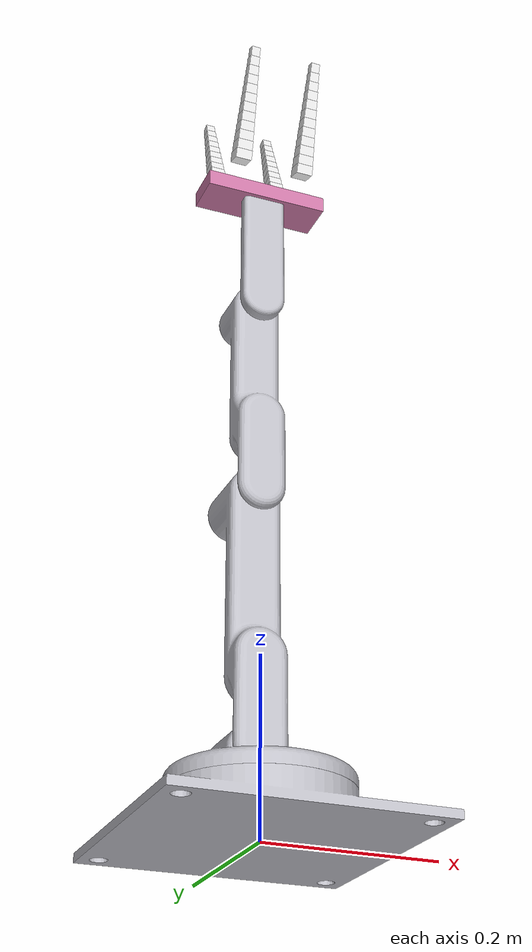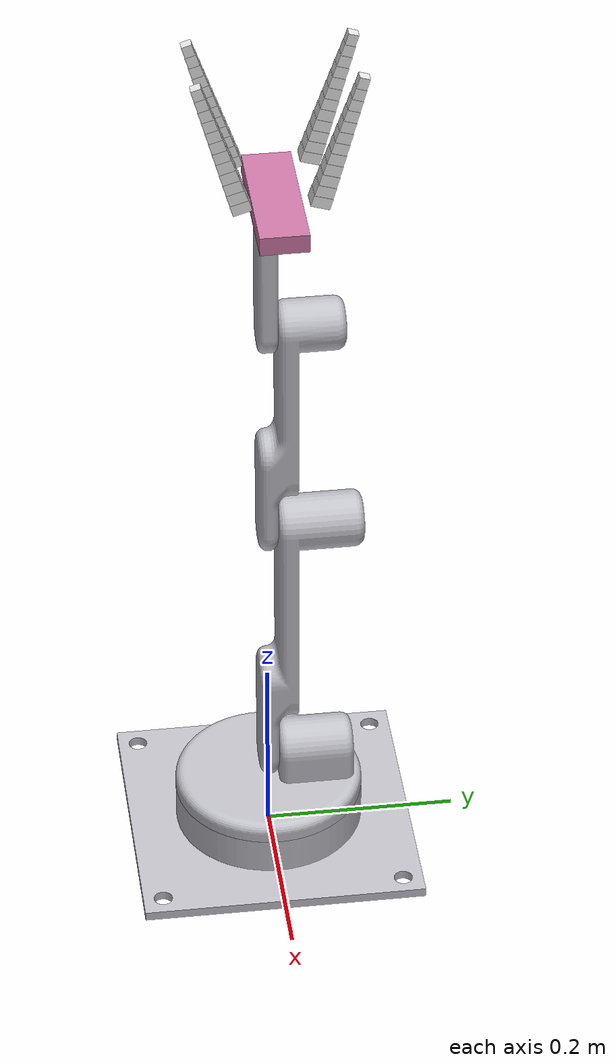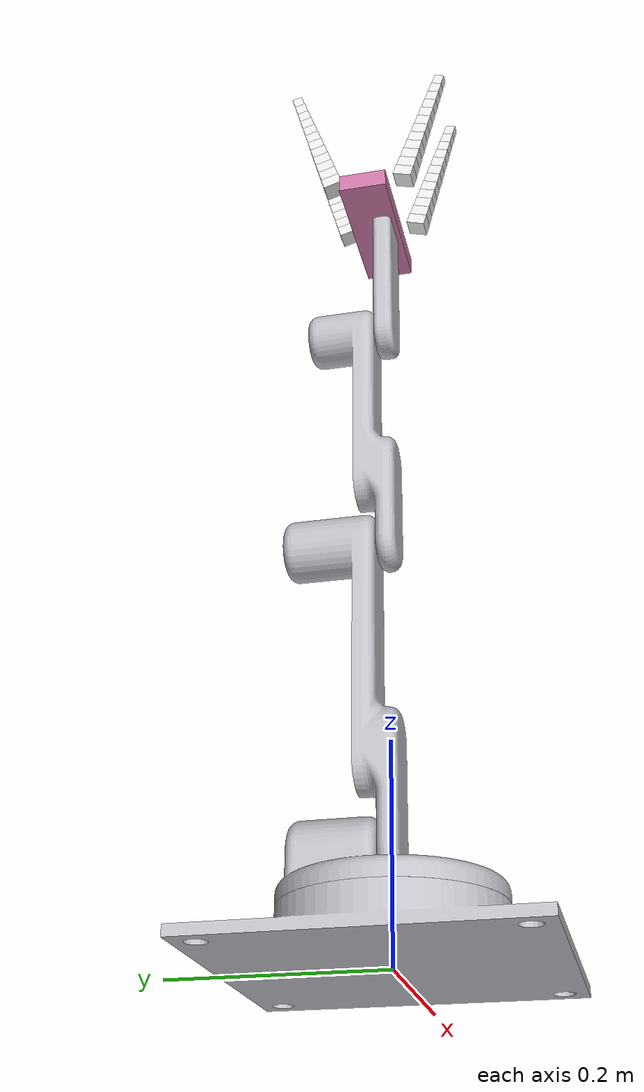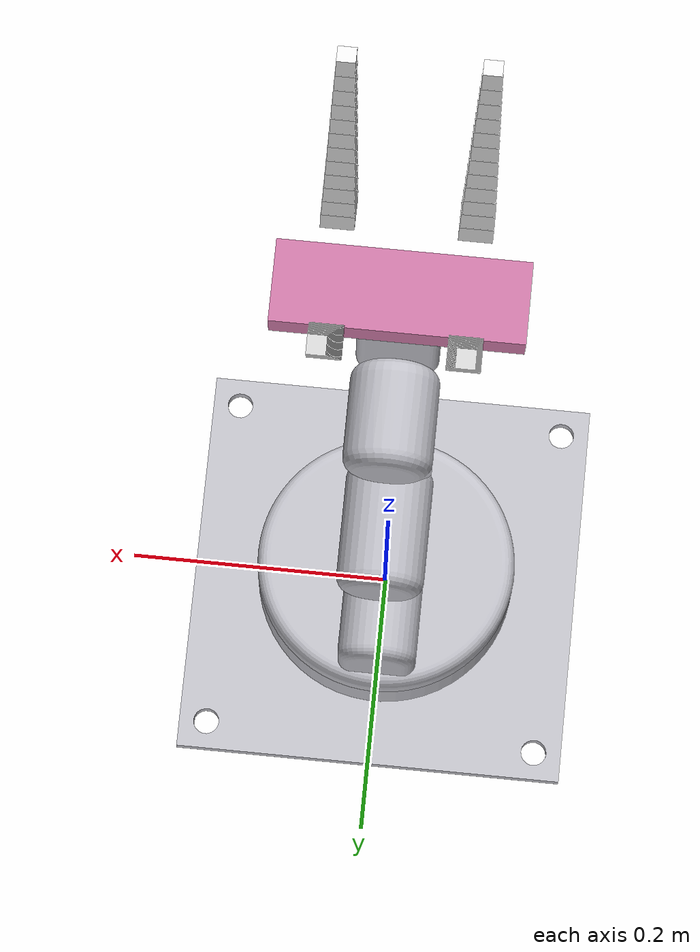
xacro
<robot xmlns:xacro="http://www.ros.org/wiki/xacro" name="Design">

<xacro:include filename="$(find main_description)/urdf/macros2.xacro" />
<xacro:include filename="$(find main_description)/urdf/arm.xacro" />

<xacro:property name="PI" value="3.14159" />

<link name="world" />

<link name="palm">
	<visual>
		<geometry>
			<box size="0.15 0.05 0.02" />
		</geometry>
	</visual>
	<inertial>
		<mass value="0.1" />
		<inertia ixx="0.001" ixy="0.001" ixz="0.001" iyy="0.001" iyz="0.001" izz="0.001" />
	</inertial>
	<collision>
		<geometry>
			<box size="0.15 0.05 0.02" />
		</geometry>
		</collision>
</link>

<gazebo reference="palm">
	<mu1>2000</mu1>
	<mu2>2000</mu2>
	<selfCollide>true</selfCollide>
	<gravity>true</gravity>
</gazebo>

<joint name="palm_arm_joint" type="fixed">
    <parent link="Link4_1" />
    <child link="palm" />
	<origin rpy="0 0 0" xyz="0.0 0 0.15" />
</joint>

<gazebo>
  	<plugin filename="libgazebo_ros_control.so" name="gazebo_ros_control">
		<robotNamespace />
  	</plugin>
 	<plugin filename="libspring_joint_plugin.so" name="spring_joint_plugin">
		<kConstant> 0.4 </kConstant>
	</plugin>
	<plugin filename="libjoint_controller_plugin.so" name="joint_controller_plugin">
		<jointNamesParam> arm_controller/ </jointNamesParam>
	</plugin>
	<plugin filename="libjoint_force_visualiser_plugin.so" name="joint_force_visualier_plugin">
		<robotNamespace />
	</plugin>

</gazebo>

 <!--  MACROS FOR FINGER: LT-->

<xacro:seg name= "LTseg1" length = "0.0125" height = "0.02" width = "0.02" />
<xacro:seg_joint_offset seg1= "palm" seg2="LTseg1" length="0.0125" offset="0.04 0.04 0.03" rotation="-0.3 0 0" force="2.0" />
<xacro:seg_trans seg1="palm" seg2="LTseg1"/>
<xacro:segment name= "LTseg2" parent="LTseg1" length="0.0125" height="0.0191666666667" width = "0.0191666666667" force = "2.0" />
<xacro:segment name= "LTseg3" parent="LTseg2" length="0.0125" height="0.0183333333333" width = "0.0183333333333" force = "2.0" />
<xacro:segment name= "LTseg4" parent="LTseg3" length="0.0125" height="0.0175" width = "0.0175" force = "2.0" />
<xacro:segment name= "LTseg5" parent="LTseg4" length="0.0125" height="0.0166666666667" width = "0.0166666666667" force = "2.0" />
<xacro:segment name= "LTseg6" parent="LTseg5" length="0.0125" height="0.0158333333333" width = "0.0158333333333" force = "2.0" />
<xacro:segment name= "LTseg7" parent="LTseg6" length="0.0125" height="0.015" width = "0.015" force = "2.0" />
<xacro:segment name= "LTseg8" parent="LTseg7" length="0.0125" height="0.0141666666667" width = "0.0141666666667" force = "2.0" />
<xacro:segment name= "LTseg9" parent="LTseg8" length="0.0125" height="0.0133333333333" width = "0.0133333333333" force = "2.0" />
<xacro:segment name= "LTseg10" parent="LTseg9" length="0.0125" height="0.0125" width = "0.0125" force = "2.0" />
<xacro:segment name= "LTseg11" parent="LTseg10" length="0.0125" height="0.0116666666667" width = "0.0116666666667" force = "2.0" />
<xacro:segment name= "LTseg12" parent="LTseg11" length="0.0125" height="0.0108333333333" width = "0.0108333333333" force = "2.0" />

 <!--  MACROS FOR FINGER: RT-->

<xacro:seg name= "RTseg1" length = "0.0125" height = "0.02" width = "0.02" />
<xacro:seg_joint_offset seg1= "palm" seg2="RTseg1" length="0.0125" offset="0.04 -0.04 0.03" rotation="-0.3 0 3.14159" force="2.0" />
<xacro:seg_trans seg1="palm" seg2="RTseg1"/>
<xacro:segment name= "RTseg2" parent="RTseg1" length="0.0125" height="0.0191666666667" width = "0.0191666666667" force = "2.0" />
<xacro:segment name= "RTseg3" parent="RTseg2" length="0.0125" height="0.0183333333333" width = "0.0183333333333" force = "2.0" />
<xacro:segment name= "RTseg4" parent="RTseg3" length="0.0125" height="0.0175" width = "0.0175" force = "2.0" />
<xacro:segment name= "RTseg5" parent="RTseg4" length="0.0125" height="0.0166666666667" width = "0.0166666666667" force = "2.0" />
<xacro:segment name= "RTseg6" parent="RTseg5" length="0.0125" height="0.0158333333333" width = "0.0158333333333" force = "2.0" />
<xacro:segment name= "RTseg7" parent="RTseg6" length="0.0125" height="0.015" width = "0.015" force = "2.0" />
<xacro:segment name= "RTseg8" parent="RTseg7" length="0.0125" height="0.0141666666667" width = "0.0141666666667" force = "2.0" />
<xacro:segment name= "RTseg9" parent="RTseg8" length="0.0125" height="0.0133333333333" width = "0.0133333333333" force = "2.0" />
<xacro:segment name= "RTseg10" parent="RTseg9" length="0.0125" height="0.0125" width = "0.0125" force = "2.0" />
<xacro:segment name= "RTseg11" parent="RTseg10" length="0.0125" height="0.0116666666667" width = "0.0116666666667" force = "2.0" />
<xacro:segment name= "RTseg12" parent="RTseg11" length="0.0125" height="0.0108333333333" width = "0.0108333333333" force = "2.0" />

 <!--  MACROS FOR FINGER: LB-->

<xacro:seg name= "LBseg1" length = "0.0125" height = "0.02" width = "0.02" />
<xacro:seg_joint_offset seg1= "palm" seg2="LBseg1" length="0.0125" offset="-0.04 0.04 0.03" rotation="-0.3 0 0" force="2.0" />
<xacro:seg_trans seg1="palm" seg2="LBseg1"/>
<xacro:segment name= "LBseg2" parent="LBseg1" length="0.0125" height="0.0191666666667" width = "0.0191666666667" force = "2.0" />
<xacro:segment name= "LBseg3" parent="LBseg2" length="0.0125" height="0.0183333333333" width = "0.0183333333333" force = "2.0" />
<xacro:segment name= "LBseg4" parent="LBseg3" length="0.0125" height="0.0175" width = "0.0175" force = "2.0" />
<xacro:segment name= "LBseg5" parent="LBseg4" length="0.0125" height="0.0166666666667" width = "0.0166666666667" force = "2.0" />
<xacro:segment name= "LBseg6" parent="LBseg5" length="0.0125" height="0.0158333333333" width = "0.0158333333333" force = "2.0" />
<xacro:segment name= "LBseg7" parent="LBseg6" length="0.0125" height="0.015" width = "0.015" force = "2.0" />
<xacro:segment name= "LBseg8" parent="LBseg7" length="0.0125" height="0.0141666666667" width = "0.0141666666667" force = "2.0" />
<xacro:segment name= "LBseg9" parent="LBseg8" length="0.0125" height="0.0133333333333" width = "0.0133333333333" force = "2.0" />
<xacro:segment name= "LBseg10" parent="LBseg9" length="0.0125" height="0.0125" width = "0.0125" force = "2.0" />
<xacro:segment name= "LBseg11" parent="LBseg10" length="0.0125" height="0.0116666666667" width = "0.0116666666667" force = "2.0" />
<xacro:segment name= "LBseg12" parent="LBseg11" length="0.0125" height="0.0108333333333" width = "0.0108333333333" force = "2.0" />

 <!--  MACROS FOR FINGER: RB-->

<xacro:seg name= "RBseg1" length = "0.0125" height = "0.02" width = "0.02" />
<xacro:seg_joint_offset seg1= "palm" seg2="RBseg1" length="0.0125" offset="-0.04 -0.04 0.03" rotation="-0.3 0 3.14159" force="2.0" />
<xacro:seg_trans seg1="palm" seg2="RBseg1"/>
<xacro:segment name= "RBseg2" parent="RBseg1" length="0.0125" height="0.0191666666667" width = "0.0191666666667" force = "2.0" />
<xacro:segment name= "RBseg3" parent="RBseg2" length="0.0125" height="0.0183333333333" width = "0.0183333333333" force = "2.0" />
<xacro:segment name= "RBseg4" parent="RBseg3" length="0.0125" height="0.0175" width = "0.0175" force = "2.0" />
<xacro:segment name= "RBseg5" parent="RBseg4" length="0.0125" height="0.0166666666667" width = "0.0166666666667" force = "2.0" />
<xacro:segment name= "RBseg6" parent="RBseg5" length="0.0125" height="0.0158333333333" width = "0.0158333333333" force = "2.0" />
<xacro:segment name= "RBseg7" parent="RBseg6" length="0.0125" height="0.015" width = "0.015" force = "2.0" />
<xacro:segment name= "RBseg8" parent="RBseg7" length="0.0125" height="0.0141666666667" width = "0.0141666666667" force = "2.0" />
<xacro:segment name= "RBseg9" parent="RBseg8" length="0.0125" height="0.0133333333333" width = "0.0133333333333" force = "2.0" />
<xacro:segment name= "RBseg10" parent="RBseg9" length="0.0125" height="0.0125" width = "0.0125" force = "2.0" />
<xacro:segment name= "RBseg11" parent="RBseg10" length="0.0125" height="0.0116666666667" width = "0.0116666666667" force = "2.0" />
<xacro:segment name= "RBseg12" parent="RBseg11" length="0.0125" height="0.0108333333333" width = "0.0108333333333" force = "2.0" />
</robot>

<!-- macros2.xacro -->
<robot name="Design" xmlns:xacro="http://www.ros.org/wiki/xacro">

<xacro:include filename="$(find main_description)/urdf/inertias.xacro" />

<xacro:property name="fingerForce" value = "1"/>

<xacro:macro name="segment" params="name parent length height width force">
	<xacro:seg name="${name}" length="${length}" height="${height}" width="${width}"/>
	<xacro:seg_joint seg1="${parent}" seg2="${name}" length="${length}" force="${force}"/>
	<xacro:seg_trans seg1="${parent}" seg2="${name}"/>
</xacro:macro>

<xacro:macro name="seg" params="name length height width">
	<link name="${name}">
		<visual>
			<geometry>
				<box size="${width} ${height} ${length}"/>
			</geometry>
			<origin xyz="0 0 0"/>
			<material name="white"/>
		</visual>

		<xacro:box_inertial_with_origin x="${width}" y="${height}" z="${length}" mass="0.01">
			<origin xyz="0 0 0" rpy="0 0 0"/>
		</xacro:box_inertial_with_origin>
		<collision>
			<geometry>
				<box size="${width} ${height} ${length}"/>
			</geometry>
			<origin xyz="0 0 0"/>
		</collision>

	</link>
	<gazebo reference="${name}">
		<mu1>20000</mu1>
		<mu2>20000</mu2>
		<selfCollide>true</selfCollide>
		<gravity>true</gravity>

	</gazebo>

</xacro:macro>

<xacro:macro name="seg_joint" params="seg1 seg2 length force">
	<joint name="${seg1}_${seg2}_joint" type="revolute">
		<axis xyz="1 0 0"/>
		<limit effort="${force}" lower="-2" upper="2" velocity="0.001"/>
		<dynamics damping="0.02" friction="0.0"/>
		<origin xyz="0 0 ${length}" rpy="0 0 0"/>
		<parent link="${seg1}"/>
		<child link="${seg2}"/>
	</joint>
	<gazebo reference="${seg1}_${seg2}_joint">
  		<implicitSpringDamper>True</implicitSpringDamper>

	</gazebo>
</xacro:macro>

<xacro:macro name="seg_joint_offset" params="seg1 seg2 length offset rotation force">
	<joint name="${seg1}_${seg2}_joint" type="revolute">
		<axis xyz="1 0 0"/>
		<limit effort="${force}" lower="-0.0" upper="0.0" velocity="0.0001"/>
		<origin xyz="${offset}" rpy="${rotation}"/>
		<parent link="${seg1}"/>
		<child link="${seg2}"/>
	</joint>
</xacro:macro>

<xacro:macro name="seg_trans" params="seg1 seg2">
	<transmission name="${seg1}_${seg2}_trans">
		<type>transmission_interface/SimpleTransmission</type>
		<actuator name="${seg1}_${seg2}_motor">
			<mechanicalReduction>1</mechanicalReduction>
		</actuator>
		<joint name="${seg1}_${seg2}_joint">
			<hardwareInterface>hardware_interface/EffortJointInterface</hardwareInterface>
		</joint>
	</transmission>
	<gazebo reference="${seg1}_${seg2}_joint">
		<mu1 value="200.0"/>
		<mu2 value="100.0"/>
		<kp value = "10000000.0" />
		<kd value = "1.0" />
		<material>Gazebo/Grey</material>
	</gazebo>
</xacro:macro>

</robot>

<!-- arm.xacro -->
<robot name="Design" xmlns:xacro="http://www.ros.org/wiki/xacro">

<xacro:include filename="$(find main_description)/urdf/Design.trans" />

<!--  PROPERTIES  -->

<xacro:property name="strength" value="10000"/>
<xacro:property name="speed" value = "0.01"/>
<xacro:property name="damping" value = "0"/>

<xacro:property name="offset" value="-0.05"/>

<!-- LINKS  -->

<link name="base_link">
  <inertial>
    <origin rpy="0 0 0" xyz="-6.108345103356556e-15 5.090287586130463e-17 0.01965246769632399"/>
    <mass value="16.83095492294922"/>
    <inertia ixx="0.079936" ixy="0.0" ixz="-0.0" iyy="0.079936" iyz="0.0" izz="0.152021"/>
  </inertial>
  <visual>
    <origin rpy="0 0 0" xyz="0 0 0"/>
    <geometry>
      <mesh filename="package://main_description/meshes/base_link.stl" scale="0.001 0.001 0.001"/>
    </geometry>
    <material name="silver"/>
  </visual>
  <collision>
    <origin rpy="0 0 0" xyz="0 0 0"/>
    <geometry>
      <mesh filename="package://main_description/meshes/base_link.stl" scale="0.001 0.001 0.001"/>
    </geometry>
  </collision>
</link>

<link name="Link1_1">
  <inertial>
    <origin rpy="0 0 0" xyz="-1.2279118486616705e-05 0.01442476351451121 0.020602870891923072"/>
    <mass value="0.9178712114753625"/>
    <inertia ixx="0.002553" ixy="0.0" ixz="0.0" iyy="0.002018" iyz="-0.00035" izz="0.00387"/>
  </inertial>
  <visual>
    <origin rpy="0 0 0" xyz="-0.0 -0.0 -0.05"/>
    <geometry>
      <mesh filename="package://main_description/meshes/Link1_1.stl" scale="0.001 0.001 0.001"/>
    </geometry>
    <material name="silver"/>
  </visual>
  <collision>
    <origin rpy="0 0 0" xyz="-0.0 -0.0 -0.05"/>
    <geometry>
      <mesh filename="package://main_description/meshes/Link1_1.stl" scale="0.001 0.001 0.001"/>
    </geometry>
  </collision>
</link>

<link name="Link2_1">
  <inertial>
    <origin rpy="0 0 0" xyz="-2.968335648842978e-07 0.018054267252499347 0.1868568711048091"/>
    <mass value="0.712050673323837"/>
    <inertia ixx="0.008737" ixy="0.0" ixz="0.0" iyy="0.008392" iyz="-0.001509" izz="0.000705"/>
  </inertial>
  <visual>
    <origin rpy="0 0 0" xyz="4.2e-05 -0.009807 -0.1"/>
    <geometry>
      <mesh filename="package://main_description/meshes/Link2_1.stl" scale="0.001 0.001 0.001"/>
    </geometry>
    <material name="silver"/>
  </visual>
  <collision>
    <origin rpy="0 0 0" xyz="4.2e-05 -0.009807 -0.1"/>
    <geometry>
      <mesh filename="package://main_description/meshes/Link2_1.stl" scale="0.001 0.001 0.001"/>
    </geometry>
  </collision>
</link>

<link name="Link3_1">
  <inertial>
    <origin rpy="0 0 0" xyz="3.894856228585856e-05 0.012744269230917583 0.14887041213898544"/>
    <mass value="0.5352959751924613"/>
    <inertia ixx="0.004471" ixy="-0.0" ixz="-1e-06" iyy="0.004348" iyz="-0.000747" izz="0.000361"/>
  </inertial>
  <visual>
    <origin rpy="0 0 0" xyz="4.2e-05 -0.009807 -0.4"/>
    <geometry>
      <mesh filename="package://main_description/meshes/Link3_1.stl" scale="0.001 0.001 0.001"/>
    </geometry>
    <material name="silver"/>
  </visual>
  <collision>
    <origin rpy="0 0 0" xyz="4.2e-05 -0.009807 -0.4"/>
    <geometry>
      <mesh filename="package://main_description/meshes/Link3_1.stl" scale="0.001 0.001 0.001"/>
    </geometry>
  </collision>
</link>

<link name="Link4_1">
  <inertial>
    <origin rpy="0 0 0" xyz="-3.684166078735014e-07 -0.010000499675700233 0.06497387205009375"/>
    <mass value="0.18168902324741887"/>
    <inertia ixx="0.000446" ixy="0.0" ixz="0.0" iyy="0.000477" iyz="0.0" izz="4.3e-05"/>
  </inertial>
  <visual>
    <origin rpy="0 0 0" xyz="-2.4e-05 -0.009807 -0.65"/>
    <geometry>
      <mesh filename="package://main_description/meshes/Link4_1.stl" scale="0.001 0.001 0.001"/>
    </geometry>
    <material name="silver"/>
  </visual>
  <collision>
    <origin rpy="0 0 0" xyz="-2.4e-05 -0.009807 -0.65"/>
    <geometry>
      <mesh filename="package://main_description/meshes/Link4_1.stl" scale="0.001 0.001 0.001"/>
    </geometry>
  </collision>
</link>

<!--  JOINTS  -->

<joint name="world_joint" type="fixed">
  <axis xyz="0 0 1"/>
	<origin xyz="0.0 0.0 0.0" rpy="0 0 0" />
	<parent link="world"/>
	<child link="base_link"/>
</joint>

<joint name="Rev1" type="continuous">
  <origin rpy="0 0 0" xyz="0.0 0.0 0.05"/>
  <parent link="base_link"/>
  <child link="Link1_1"/>
  <axis xyz="0.0 0.0 1.0"/>
  <limit effort="${strength}" lower="-6.283185" upper="6.283185" velocity="${speed}"/>
  <dynamics damping="${damping}" friction="0.0"/>
</joint>

<joint name="Rev2" type="revolute">
  <origin rpy="0 0 0" xyz="-4.2e-05 0.009807 0.05"/>
  <parent link="Link1_1"/>
  <child link="Link2_1"/>
  <axis xyz="0.0 -1.0 0.0"/>
  <limit effort="${strength}" lower="-1.396263" upper="1.396263" velocity="${speed}"/>
  <dynamics damping="${damping}" friction="0.0"/>
</joint>

<joint name="Rev3" type="revolute">
  <origin rpy="0 0 0" xyz="0.0 0.0 0.3"/>
  <parent link="Link2_1"/>
  <child link="Link3_1"/>
  <axis xyz="0.0 -1.0 0.0"/>
  <limit effort="${strength}" lower="-2.792527" upper="2.792527" velocity="${speed}"/>
  <dynamics damping="${damping}" friction="0.0"/>
</joint>

<joint name="Rev4" type="revolute">
  <origin rpy="0 0 0" xyz="6.6e-05 0.0 0.25"/>
  <parent link="Link3_1"/>
  <child link="Link4_1"/>
  <axis xyz="0.0 -1.0 0.0"/>
  <limit effort="${strength}" lower="-2.617994" upper="2.617994" velocity="${speed}"/>
  <dynamics damping="${damping}" friction="0.0"/>
</joint>

</robot>
